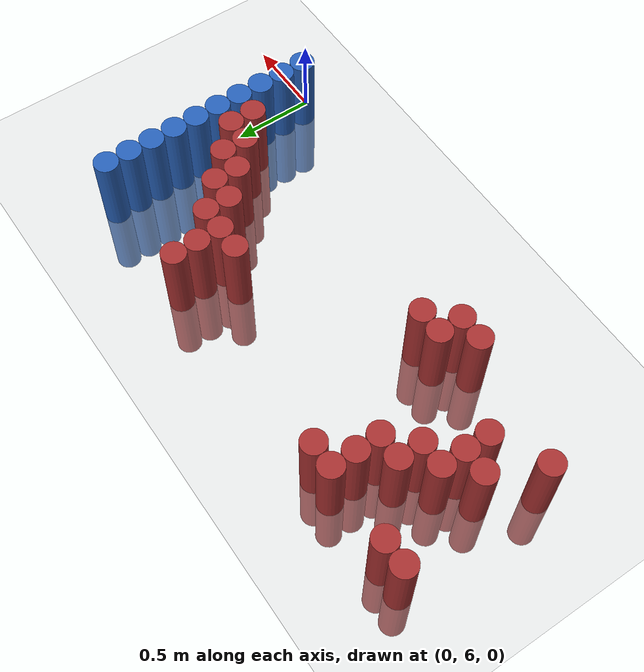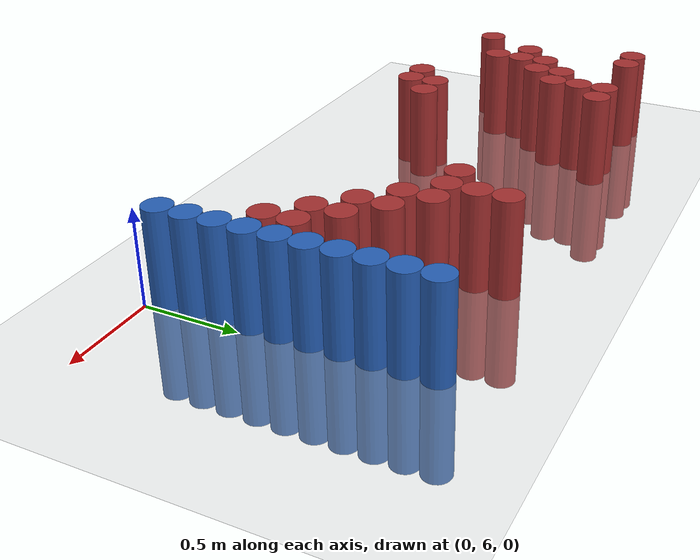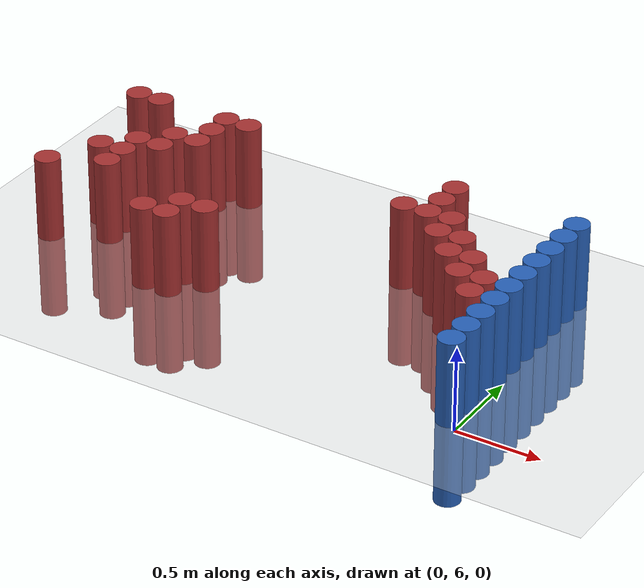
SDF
<sdf version="1.6">
 <world name="default">
  <model name="ground_plane">
   <static>1</static>
   <link name="link">
    <collision name="collision">
     <geometry><plane><normal>0 0 1</normal><size>100 100</size></plane></geometry>
     <surface><friction><ode><mu>100</mu><mu2>50</mu2></ode></friction></surface>
    </collision>
    <visual name="visual">
     <cast_shadows>0</cast_shadows>
     <geometry><plane><normal>0 0 1</normal><size>100 100</size></plane></geometry>
     <material>
      <script><uri>file://media/materials/scripts/gazebo.material</uri><name>Gazebo/Grey</name></script>
     </material>
    </visual>
   </link>
  </model>
  <model name="unit_cylinder_206">
   <static>1</static>
   <pose>-2.925000 6.525000 0.000000 0.000000 0.000000 0.000000</pose>
   <link name="link">
    <inertial>
     <mass>1</mass>
     <inertia><ixx>0.145833</ixx><ixy>0</ixy><ixz>0</ixz><iyy>0.145833</iyy><iyz>0</iyz><izz>0.125</izz></inertia>
    </inertial>
    <collision name="collision">
     <geometry><cylinder><radius>0.075000</radius><length>1</length></cylinder></geometry>
    </collision>
    <visual name="visual">
     <geometry><cylinder><radius>0.075000</radius><length>1</length></cylinder></geometry>
     <material>
      <ambient>0.648000 0.192000 0.192000 1</ambient>
      <diffuse>0.648000 0.192000 0.192000 1</diffuse>
     </material>
     <material>
      <script><name>Gazebo/Grey</name><uri>file://media/materials/scripts/gazebo.material</uri></script>
     </material>
    </visual>
    <sensor name="sensor_contact" type="contact"><contact><collision>collision</collision></contact></sensor>
   </link>
   <plugin filename="gz-sim-touchplugin-system" name="gz::sim::systems::TouchPlugin">
    <target>robot</target>
    <namespace>robot</namespace>
    <time>0.001</time>
    <enabled>true</enabled>
   </plugin>
  </model>
  <model name="unit_cylinder_207">
   <static>1</static>
   <pose>-2.925000 7.425000 0.000000 0.000000 0.000000 0.000000</pose>
   <link name="link">
    <inertial>
     <mass>1</mass>
     <inertia><ixx>0.145833</ixx><ixy>0</ixy><ixz>0</ixz><iyy>0.145833</iyy><iyz>0</iyz><izz>0.125</izz></inertia>
    </inertial>
    <collision name="collision">
     <geometry><cylinder><radius>0.075000</radius><length>1</length></cylinder></geometry>
    </collision>
    <visual name="visual">
     <geometry><cylinder><radius>0.075000</radius><length>1</length></cylinder></geometry>
     <material>
      <ambient>0.648000 0.192000 0.192000 1</ambient>
      <diffuse>0.648000 0.192000 0.192000 1</diffuse>
     </material>
     <material>
      <script><name>Gazebo/Grey</name><uri>file://media/materials/scripts/gazebo.material</uri></script>
     </material>
    </visual>
    <sensor name="sensor_contact" type="contact"><contact><collision>collision</collision></contact></sensor>
   </link>
   <plugin filename="gz-sim-touchplugin-system" name="gz::sim::systems::TouchPlugin">
    <target>robot</target>
    <namespace>robot</namespace>
    <time>0.001</time>
    <enabled>true</enabled>
   </plugin>
  </model>
  <model name="unit_cylinder_215">
   <static>1</static>
   <pose>-2.775000 6.825000 0.000000 0.000000 0.000000 0.000000</pose>
   <link name="link">
    <inertial>
     <mass>1</mass>
     <inertia><ixx>0.145833</ixx><ixy>0</ixy><ixz>0</ixz><iyy>0.145833</iyy><iyz>0</iyz><izz>0.125</izz></inertia>
    </inertial>
    <collision name="collision">
     <geometry><cylinder><radius>0.075000</radius><length>1</length></cylinder></geometry>
    </collision>
    <visual name="visual">
     <geometry><cylinder><radius>0.075000</radius><length>1</length></cylinder></geometry>
     <material>
      <ambient>0.648000 0.192000 0.192000 1</ambient>
      <diffuse>0.648000 0.192000 0.192000 1</diffuse>
     </material>
     <material>
      <script><name>Gazebo/Grey</name><uri>file://media/materials/scripts/gazebo.material</uri></script>
     </material>
    </visual>
    <sensor name="sensor_contact" type="contact"><contact><collision>collision</collision></contact></sensor>
   </link>
   <plugin filename="gz-sim-touchplugin-system" name="gz::sim::systems::TouchPlugin">
    <target>robot</target>
    <namespace>robot</namespace>
    <time>0.001</time>
    <enabled>true</enabled>
   </plugin>
  </model>
  <model name="unit_cylinder_216">
   <static>1</static>
   <pose>-2.775000 7.425000 0.000000 0.000000 0.000000 0.000000</pose>
   <link name="link">
    <inertial>
     <mass>1</mass>
     <inertia><ixx>0.145833</ixx><ixy>0</ixy><ixz>0</ixz><iyy>0.145833</iyy><iyz>0</iyz><izz>0.125</izz></inertia>
    </inertial>
    <collision name="collision">
     <geometry><cylinder><radius>0.075000</radius><length>1</length></cylinder></geometry>
    </collision>
    <visual name="visual">
     <geometry><cylinder><radius>0.075000</radius><length>1</length></cylinder></geometry>
     <material>
      <ambient>0.648000 0.192000 0.192000 1</ambient>
      <diffuse>0.648000 0.192000 0.192000 1</diffuse>
     </material>
     <material>
      <script><name>Gazebo/Grey</name><uri>file://media/materials/scripts/gazebo.material</uri></script>
     </material>
    </visual>
    <sensor name="sensor_contact" type="contact"><contact><collision>collision</collision></contact></sensor>
   </link>
   <plugin filename="gz-sim-touchplugin-system" name="gz::sim::systems::TouchPlugin">
    <target>robot</target>
    <namespace>robot</namespace>
    <time>0.001</time>
    <enabled>true</enabled>
   </plugin>
  </model>
  <model name="unit_cylinder_224">
   <static>1</static>
   <pose>-2.625000 6.675000 0.000000 0.000000 0.000000 0.000000</pose>
   <link name="link">
    <inertial>
     <mass>1</mass>
     <inertia><ixx>0.145833</ixx><ixy>0</ixy><ixz>0</ixz><iyy>0.145833</iyy><iyz>0</iyz><izz>0.125</izz></inertia>
    </inertial>
    <collision name="collision">
     <geometry><cylinder><radius>0.075000</radius><length>1</length></cylinder></geometry>
    </collision>
    <visual name="visual">
     <geometry><cylinder><radius>0.075000</radius><length>1</length></cylinder></geometry>
     <material>
      <ambient>0.648000 0.192000 0.192000 1</ambient>
      <diffuse>0.648000 0.192000 0.192000 1</diffuse>
     </material>
     <material>
      <script><name>Gazebo/Grey</name><uri>file://media/materials/scripts/gazebo.material</uri></script>
     </material>
    </visual>
    <sensor name="sensor_contact" type="contact"><contact><collision>collision</collision></contact></sensor>
   </link>
   <plugin filename="gz-sim-touchplugin-system" name="gz::sim::systems::TouchPlugin">
    <target>robot</target>
    <namespace>robot</namespace>
    <time>0.001</time>
    <enabled>true</enabled>
   </plugin>
  </model>
  <model name="unit_cylinder_225">
   <static>1</static>
   <pose>-2.625000 6.825000 0.000000 0.000000 0.000000 0.000000</pose>
   <link name="link">
    <inertial>
     <mass>1</mass>
     <inertia><ixx>0.145833</ixx><ixy>0</ixy><ixz>0</ixz><iyy>0.145833</iyy><iyz>0</iyz><izz>0.125</izz></inertia>
    </inertial>
    <collision name="collision">
     <geometry><cylinder><radius>0.075000</radius><length>1</length></cylinder></geometry>
    </collision>
    <visual name="visual">
     <geometry><cylinder><radius>0.075000</radius><length>1</length></cylinder></geometry>
     <material>
      <ambient>0.648000 0.192000 0.192000 1</ambient>
      <diffuse>0.648000 0.192000 0.192000 1</diffuse>
     </material>
     <material>
      <script><name>Gazebo/Grey</name><uri>file://media/materials/scripts/gazebo.material</uri></script>
     </material>
    </visual>
    <sensor name="sensor_contact" type="contact"><contact><collision>collision</collision></contact></sensor>
   </link>
   <plugin filename="gz-sim-touchplugin-system" name="gz::sim::systems::TouchPlugin">
    <target>robot</target>
    <namespace>robot</namespace>
    <time>0.001</time>
    <enabled>true</enabled>
   </plugin>
  </model>
  <model name="unit_cylinder_226">
   <static>1</static>
   <pose>-2.625000 6.975000 0.000000 0.000000 0.000000 0.000000</pose>
   <link name="link">
    <inertial>
     <mass>1</mass>
     <inertia><ixx>0.145833</ixx><ixy>0</ixy><ixz>0</ixz><iyy>0.145833</iyy><iyz>0</iyz><izz>0.125</izz></inertia>
    </inertial>
    <collision name="collision">
     <geometry><cylinder><radius>0.075000</radius><length>1</length></cylinder></geometry>
    </collision>
    <visual name="visual">
     <geometry><cylinder><radius>0.075000</radius><length>1</length></cylinder></geometry>
     <material>
      <ambient>0.648000 0.192000 0.192000 1</ambient>
      <diffuse>0.648000 0.192000 0.192000 1</diffuse>
     </material>
     <material>
      <script><name>Gazebo/Grey</name><uri>file://media/materials/scripts/gazebo.material</uri></script>
     </material>
    </visual>
    <sensor name="sensor_contact" type="contact"><contact><collision>collision</collision></contact></sensor>
   </link>
   <plugin filename="gz-sim-touchplugin-system" name="gz::sim::systems::TouchPlugin">
    <target>robot</target>
    <namespace>robot</namespace>
    <time>0.001</time>
    <enabled>true</enabled>
   </plugin>
  </model>
  <model name="unit_cylinder_234">
   <static>1</static>
   <pose>-2.475000 6.975000 0.000000 0.000000 0.000000 0.000000</pose>
   <link name="link">
    <inertial>
     <mass>1</mass>
     <inertia><ixx>0.145833</ixx><ixy>0</ixy><ixz>0</ixz><iyy>0.145833</iyy><iyz>0</iyz><izz>0.125</izz></inertia>
    </inertial>
    <collision name="collision">
     <geometry><cylinder><radius>0.075000</radius><length>1</length></cylinder></geometry>
    </collision>
    <visual name="visual">
     <geometry><cylinder><radius>0.075000</radius><length>1</length></cylinder></geometry>
     <material>
      <ambient>0.648000 0.192000 0.192000 1</ambient>
      <diffuse>0.648000 0.192000 0.192000 1</diffuse>
     </material>
     <material>
      <script><name>Gazebo/Grey</name><uri>file://media/materials/scripts/gazebo.material</uri></script>
     </material>
    </visual>
    <sensor name="sensor_contact" type="contact"><contact><collision>collision</collision></contact></sensor>
   </link>
   <plugin filename="gz-sim-touchplugin-system" name="gz::sim::systems::TouchPlugin">
    <target>robot</target>
    <namespace>robot</namespace>
    <time>0.001</time>
    <enabled>true</enabled>
   </plugin>
  </model>
  <model name="unit_cylinder_235">
   <static>1</static>
   <pose>-2.475000 7.125000 0.000000 0.000000 0.000000 0.000000</pose>
   <link name="link">
    <inertial>
     <mass>1</mass>
     <inertia><ixx>0.145833</ixx><ixy>0</ixy><ixz>0</ixz><iyy>0.145833</iyy><iyz>0</iyz><izz>0.125</izz></inertia>
    </inertial>
    <collision name="collision">
     <geometry><cylinder><radius>0.075000</radius><length>1</length></cylinder></geometry>
    </collision>
    <visual name="visual">
     <geometry><cylinder><radius>0.075000</radius><length>1</length></cylinder></geometry>
     <material>
      <ambient>0.648000 0.192000 0.192000 1</ambient>
      <diffuse>0.648000 0.192000 0.192000 1</diffuse>
     </material>
     <material>
      <script><name>Gazebo/Grey</name><uri>file://media/materials/scripts/gazebo.material</uri></script>
     </material>
    </visual>
    <sensor name="sensor_contact" type="contact"><contact><collision>collision</collision></contact></sensor>
   </link>
   <plugin filename="gz-sim-touchplugin-system" name="gz::sim::systems::TouchPlugin">
    <target>robot</target>
    <namespace>robot</namespace>
    <time>0.001</time>
    <enabled>true</enabled>
   </plugin>
  </model>
  <model name="unit_cylinder_244">
   <static>1</static>
   <pose>-2.325000 7.125000 0.000000 0.000000 0.000000 0.000000</pose>
   <link name="link">
    <inertial>
     <mass>1</mass>
     <inertia><ixx>0.145833</ixx><ixy>0</ixy><ixz>0</ixz><iyy>0.145833</iyy><iyz>0</iyz><izz>0.125</izz></inertia>
    </inertial>
    <collision name="collision">
     <geometry><cylinder><radius>0.075000</radius><length>1</length></cylinder></geometry>
    </collision>
    <visual name="visual">
     <geometry><cylinder><radius>0.075000</radius><length>1</length></cylinder></geometry>
     <material>
      <ambient>0.648000 0.192000 0.192000 1</ambient>
      <diffuse>0.648000 0.192000 0.192000 1</diffuse>
     </material>
     <material>
      <script><name>Gazebo/Grey</name><uri>file://media/materials/scripts/gazebo.material</uri></script>
     </material>
    </visual>
    <sensor name="sensor_contact" type="contact"><contact><collision>collision</collision></contact></sensor>
   </link>
   <plugin filename="gz-sim-touchplugin-system" name="gz::sim::systems::TouchPlugin">
    <target>robot</target>
    <namespace>robot</namespace>
    <time>0.001</time>
    <enabled>true</enabled>
   </plugin>
  </model>
  <model name="unit_cylinder_245">
   <static>1</static>
   <pose>-2.325000 7.275000 0.000000 0.000000 0.000000 0.000000</pose>
   <link name="link">
    <inertial>
     <mass>1</mass>
     <inertia><ixx>0.145833</ixx><ixy>0</ixy><ixz>0</ixz><iyy>0.145833</iyy><iyz>0</iyz><izz>0.125</izz></inertia>
    </inertial>
    <collision name="collision">
     <geometry><cylinder><radius>0.075000</radius><length>1</length></cylinder></geometry>
    </collision>
    <visual name="visual">
     <geometry><cylinder><radius>0.075000</radius><length>1</length></cylinder></geometry>
     <material>
      <ambient>0.648000 0.192000 0.192000 1</ambient>
      <diffuse>0.648000 0.192000 0.192000 1</diffuse>
     </material>
     <material>
      <script><name>Gazebo/Grey</name><uri>file://media/materials/scripts/gazebo.material</uri></script>
     </material>
    </visual>
    <sensor name="sensor_contact" type="contact"><contact><collision>collision</collision></contact></sensor>
   </link>
   <plugin filename="gz-sim-touchplugin-system" name="gz::sim::systems::TouchPlugin">
    <target>robot</target>
    <namespace>robot</namespace>
    <time>0.001</time>
    <enabled>true</enabled>
   </plugin>
  </model>
  <model name="unit_cylinder_246">
   <static>1</static>
   <pose>-2.325000 7.425000 0.000000 0.000000 0.000000 0.000000</pose>
   <link name="link">
    <inertial>
     <mass>1</mass>
     <inertia><ixx>0.145833</ixx><ixy>0</ixy><ixz>0</ixz><iyy>0.145833</iyy><iyz>0</iyz><izz>0.125</izz></inertia>
    </inertial>
    <collision name="collision">
     <geometry><cylinder><radius>0.075000</radius><length>1</length></cylinder></geometry>
    </collision>
    <visual name="visual">
     <geometry><cylinder><radius>0.075000</radius><length>1</length></cylinder></geometry>
     <material>
      <ambient>0.648000 0.192000 0.192000 1</ambient>
      <diffuse>0.648000 0.192000 0.192000 1</diffuse>
     </material>
     <material>
      <script><name>Gazebo/Grey</name><uri>file://media/materials/scripts/gazebo.material</uri></script>
     </material>
    </visual>
    <sensor name="sensor_contact" type="contact"><contact><collision>collision</collision></contact></sensor>
   </link>
   <plugin filename="gz-sim-touchplugin-system" name="gz::sim::systems::TouchPlugin">
    <target>robot</target>
    <namespace>robot</namespace>
    <time>0.001</time>
    <enabled>true</enabled>
   </plugin>
  </model>
  <model name="unit_cylinder_255">
   <static>1</static>
   <pose>-2.175000 6.375000 0.000000 0.000000 0.000000 0.000000</pose>
   <link name="link">
    <inertial>
     <mass>1</mass>
     <inertia><ixx>0.145833</ixx><ixy>0</ixy><ixz>0</ixz><iyy>0.145833</iyy><iyz>0</iyz><izz>0.125</izz></inertia>
    </inertial>
    <collision name="collision">
     <geometry><cylinder><radius>0.075000</radius><length>1</length></cylinder></geometry>
    </collision>
    <visual name="visual">
     <geometry><cylinder><radius>0.075000</radius><length>1</length></cylinder></geometry>
     <material>
      <ambient>0.648000 0.192000 0.192000 1</ambient>
      <diffuse>0.648000 0.192000 0.192000 1</diffuse>
     </material>
     <material>
      <script><name>Gazebo/Grey</name><uri>file://media/materials/scripts/gazebo.material</uri></script>
     </material>
    </visual>
    <sensor name="sensor_contact" type="contact"><contact><collision>collision</collision></contact></sensor>
   </link>
   <plugin filename="gz-sim-touchplugin-system" name="gz::sim::systems::TouchPlugin">
    <target>robot</target>
    <namespace>robot</namespace>
    <time>0.001</time>
    <enabled>true</enabled>
   </plugin>
  </model>
  <model name="unit_cylinder_256">
   <static>1</static>
   <pose>-2.175000 7.425000 0.000000 0.000000 0.000000 0.000000</pose>
   <link name="link">
    <inertial>
     <mass>1</mass>
     <inertia><ixx>0.145833</ixx><ixy>0</ixy><ixz>0</ixz><iyy>0.145833</iyy><iyz>0</iyz><izz>0.125</izz></inertia>
    </inertial>
    <collision name="collision">
     <geometry><cylinder><radius>0.075000</radius><length>1</length></cylinder></geometry>
    </collision>
    <visual name="visual">
     <geometry><cylinder><radius>0.075000</radius><length>1</length></cylinder></geometry>
     <material>
      <ambient>0.648000 0.192000 0.192000 1</ambient>
      <diffuse>0.648000 0.192000 0.192000 1</diffuse>
     </material>
     <material>
      <script><name>Gazebo/Grey</name><uri>file://media/materials/scripts/gazebo.material</uri></script>
     </material>
    </visual>
    <sensor name="sensor_contact" type="contact"><contact><collision>collision</collision></contact></sensor>
   </link>
   <plugin filename="gz-sim-touchplugin-system" name="gz::sim::systems::TouchPlugin">
    <target>robot</target>
    <namespace>robot</namespace>
    <time>0.001</time>
    <enabled>true</enabled>
   </plugin>
  </model>
  <model name="unit_cylinder_261">
   <static>1</static>
   <pose>-2.025000 6.375000 0.000000 0.000000 0.000000 0.000000</pose>
   <link name="link">
    <inertial>
     <mass>1</mass>
     <inertia><ixx>0.145833</ixx><ixy>0</ixy><ixz>0</ixz><iyy>0.145833</iyy><iyz>0</iyz><izz>0.125</izz></inertia>
    </inertial>
    <collision name="collision">
     <geometry><cylinder><radius>0.075000</radius><length>1</length></cylinder></geometry>
    </collision>
    <visual name="visual">
     <geometry><cylinder><radius>0.075000</radius><length>1</length></cylinder></geometry>
     <material>
      <ambient>0.648000 0.192000 0.192000 1</ambient>
      <diffuse>0.648000 0.192000 0.192000 1</diffuse>
     </material>
     <material>
      <script><name>Gazebo/Grey</name><uri>file://media/materials/scripts/gazebo.material</uri></script>
     </material>
    </visual>
    <sensor name="sensor_contact" type="contact"><contact><collision>collision</collision></contact></sensor>
   </link>
   <plugin filename="gz-sim-touchplugin-system" name="gz::sim::systems::TouchPlugin">
    <target>robot</target>
    <namespace>robot</namespace>
    <time>0.001</time>
    <enabled>true</enabled>
   </plugin>
  </model>
  <model name="unit_cylinder_262">
   <static>1</static>
   <pose>-2.025000 6.525000 0.000000 0.000000 0.000000 0.000000</pose>
   <link name="link">
    <inertial>
     <mass>1</mass>
     <inertia><ixx>0.145833</ixx><ixy>0</ixy><ixz>0</ixz><iyy>0.145833</iyy><iyz>0</iyz><izz>0.125</izz></inertia>
    </inertial>
    <collision name="collision">
     <geometry><cylinder><radius>0.075000</radius><length>1</length></cylinder></geometry>
    </collision>
    <visual name="visual">
     <geometry><cylinder><radius>0.075000</radius><length>1</length></cylinder></geometry>
     <material>
      <ambient>0.648000 0.192000 0.192000 1</ambient>
      <diffuse>0.648000 0.192000 0.192000 1</diffuse>
     </material>
     <material>
      <script><name>Gazebo/Grey</name><uri>file://media/materials/scripts/gazebo.material</uri></script>
     </material>
    </visual>
    <sensor name="sensor_contact" type="contact"><contact><collision>collision</collision></contact></sensor>
   </link>
   <plugin filename="gz-sim-touchplugin-system" name="gz::sim::systems::TouchPlugin">
    <target>robot</target>
    <namespace>robot</namespace>
    <time>0.001</time>
    <enabled>true</enabled>
   </plugin>
  </model>
  <model name="unit_cylinder_268">
   <static>1</static>
   <pose>-1.875000 6.525000 0.000000 0.000000 0.000000 0.000000</pose>
   <link name="link">
    <inertial>
     <mass>1</mass>
     <inertia><ixx>0.145833</ixx><ixy>0</ixy><ixz>0</ixz><iyy>0.145833</iyy><iyz>0</iyz><izz>0.125</izz></inertia>
    </inertial>
    <collision name="collision">
     <geometry><cylinder><radius>0.075000</radius><length>1</length></cylinder></geometry>
    </collision>
    <visual name="visual">
     <geometry><cylinder><radius>0.075000</radius><length>1</length></cylinder></geometry>
     <material>
      <ambient>0.648000 0.192000 0.192000 1</ambient>
      <diffuse>0.648000 0.192000 0.192000 1</diffuse>
     </material>
     <material>
      <script><name>Gazebo/Grey</name><uri>file://media/materials/scripts/gazebo.material</uri></script>
     </material>
    </visual>
    <sensor name="sensor_contact" type="contact"><contact><collision>collision</collision></contact></sensor>
   </link>
   <plugin filename="gz-sim-touchplugin-system" name="gz::sim::systems::TouchPlugin">
    <target>robot</target>
    <namespace>robot</namespace>
    <time>0.001</time>
    <enabled>true</enabled>
   </plugin>
  </model>
  <model name="unit_cylinder_281">
   <static>1</static>
   <pose>-0.975000 7.125000 0.000000 0.000000 0.000000 0.000000</pose>
   <link name="link">
    <inertial>
     <mass>1</mass>
     <inertia><ixx>0.145833</ixx><ixy>0</ixy><ixz>0</ixz><iyy>0.145833</iyy><iyz>0</iyz><izz>0.125</izz></inertia>
    </inertial>
    <collision name="collision">
     <geometry><cylinder><radius>0.075000</radius><length>1</length></cylinder></geometry>
    </collision>
    <visual name="visual">
     <geometry><cylinder><radius>0.075000</radius><length>1</length></cylinder></geometry>
     <material>
      <ambient>0.648000 0.192000 0.192000 1</ambient>
      <diffuse>0.648000 0.192000 0.192000 1</diffuse>
     </material>
     <material>
      <script><name>Gazebo/Grey</name><uri>file://media/materials/scripts/gazebo.material</uri></script>
     </material>
    </visual>
    <sensor name="sensor_contact" type="contact"><contact><collision>collision</collision></contact></sensor>
   </link>
   <plugin filename="gz-sim-touchplugin-system" name="gz::sim::systems::TouchPlugin">
    <target>robot</target>
    <namespace>robot</namespace>
    <time>0.001</time>
    <enabled>true</enabled>
   </plugin>
  </model>
  <model name="unit_cylinder_285">
   <static>1</static>
   <pose>-0.825000 7.125000 0.000000 0.000000 0.000000 0.000000</pose>
   <link name="link">
    <inertial>
     <mass>1</mass>
     <inertia><ixx>0.145833</ixx><ixy>0</ixy><ixz>0</ixz><iyy>0.145833</iyy><iyz>0</iyz><izz>0.125</izz></inertia>
    </inertial>
    <collision name="collision">
     <geometry><cylinder><radius>0.075000</radius><length>1</length></cylinder></geometry>
    </collision>
    <visual name="visual">
     <geometry><cylinder><radius>0.075000</radius><length>1</length></cylinder></geometry>
     <material>
      <ambient>0.648000 0.192000 0.192000 1</ambient>
      <diffuse>0.648000 0.192000 0.192000 1</diffuse>
     </material>
     <material>
      <script><name>Gazebo/Grey</name><uri>file://media/materials/scripts/gazebo.material</uri></script>
     </material>
    </visual>
    <sensor name="sensor_contact" type="contact"><contact><collision>collision</collision></contact></sensor>
   </link>
   <plugin filename="gz-sim-touchplugin-system" name="gz::sim::systems::TouchPlugin">
    <target>robot</target>
    <namespace>robot</namespace>
    <time>0.001</time>
    <enabled>true</enabled>
   </plugin>
  </model>
  <model name="unit_cylinder_286">
   <static>1</static>
   <pose>-0.825000 7.275000 0.000000 0.000000 0.000000 0.000000</pose>
   <link name="link">
    <inertial>
     <mass>1</mass>
     <inertia><ixx>0.145833</ixx><ixy>0</ixy><ixz>0</ixz><iyy>0.145833</iyy><iyz>0</iyz><izz>0.125</izz></inertia>
    </inertial>
    <collision name="collision">
     <geometry><cylinder><radius>0.075000</radius><length>1</length></cylinder></geometry>
    </collision>
    <visual name="visual">
     <geometry><cylinder><radius>0.075000</radius><length>1</length></cylinder></geometry>
     <material>
      <ambient>0.648000 0.192000 0.192000 1</ambient>
      <diffuse>0.648000 0.192000 0.192000 1</diffuse>
     </material>
     <material>
      <script><name>Gazebo/Grey</name><uri>file://media/materials/scripts/gazebo.material</uri></script>
     </material>
    </visual>
    <sensor name="sensor_contact" type="contact"><contact><collision>collision</collision></contact></sensor>
   </link>
   <plugin filename="gz-sim-touchplugin-system" name="gz::sim::systems::TouchPlugin">
    <target>robot</target>
    <namespace>robot</namespace>
    <time>0.001</time>
    <enabled>true</enabled>
   </plugin>
  </model>
  <model name="unit_cylinder_287">
   <static>1</static>
   <pose>-0.825000 7.425000 0.000000 0.000000 0.000000 0.000000</pose>
   <link name="link">
    <inertial>
     <mass>1</mass>
     <inertia><ixx>0.145833</ixx><ixy>0</ixy><ixz>0</ixz><iyy>0.145833</iyy><iyz>0</iyz><izz>0.125</izz></inertia>
    </inertial>
    <collision name="collision">
     <geometry><cylinder><radius>0.075000</radius><length>1</length></cylinder></geometry>
    </collision>
    <visual name="visual">
     <geometry><cylinder><radius>0.075000</radius><length>1</length></cylinder></geometry>
     <material>
      <ambient>0.648000 0.192000 0.192000 1</ambient>
      <diffuse>0.648000 0.192000 0.192000 1</diffuse>
     </material>
     <material>
      <script><name>Gazebo/Grey</name><uri>file://media/materials/scripts/gazebo.material</uri></script>
     </material>
    </visual>
    <sensor name="sensor_contact" type="contact"><contact><collision>collision</collision></contact></sensor>
   </link>
   <plugin filename="gz-sim-touchplugin-system" name="gz::sim::systems::TouchPlugin">
    <target>robot</target>
    <namespace>robot</namespace>
    <time>0.001</time>
    <enabled>true</enabled>
   </plugin>
  </model>
  <model name="unit_cylinder_293">
   <static>1</static>
   <pose>-0.675000 6.975000 0.000000 0.000000 0.000000 0.000000</pose>
   <link name="link">
    <inertial>
     <mass>1</mass>
     <inertia><ixx>0.145833</ixx><ixy>0</ixy><ixz>0</ixz><iyy>0.145833</iyy><iyz>0</iyz><izz>0.125</izz></inertia>
    </inertial>
    <collision name="collision">
     <geometry><cylinder><radius>0.075000</radius><length>1</length></cylinder></geometry>
    </collision>
    <visual name="visual">
     <geometry><cylinder><radius>0.075000</radius><length>1</length></cylinder></geometry>
     <material>
      <ambient>0.648000 0.192000 0.192000 1</ambient>
      <diffuse>0.648000 0.192000 0.192000 1</diffuse>
     </material>
     <material>
      <script><name>Gazebo/Grey</name><uri>file://media/materials/scripts/gazebo.material</uri></script>
     </material>
    </visual>
    <sensor name="sensor_contact" type="contact"><contact><collision>collision</collision></contact></sensor>
   </link>
   <plugin filename="gz-sim-touchplugin-system" name="gz::sim::systems::TouchPlugin">
    <target>robot</target>
    <namespace>robot</namespace>
    <time>0.001</time>
    <enabled>true</enabled>
   </plugin>
  </model>
  <model name="unit_cylinder_294">
   <static>1</static>
   <pose>-0.675000 7.125000 0.000000 0.000000 0.000000 0.000000</pose>
   <link name="link">
    <inertial>
     <mass>1</mass>
     <inertia><ixx>0.145833</ixx><ixy>0</ixy><ixz>0</ixz><iyy>0.145833</iyy><iyz>0</iyz><izz>0.125</izz></inertia>
    </inertial>
    <collision name="collision">
     <geometry><cylinder><radius>0.075000</radius><length>1</length></cylinder></geometry>
    </collision>
    <visual name="visual">
     <geometry><cylinder><radius>0.075000</radius><length>1</length></cylinder></geometry>
     <material>
      <ambient>0.648000 0.192000 0.192000 1</ambient>
      <diffuse>0.648000 0.192000 0.192000 1</diffuse>
     </material>
     <material>
      <script><name>Gazebo/Grey</name><uri>file://media/materials/scripts/gazebo.material</uri></script>
     </material>
    </visual>
    <sensor name="sensor_contact" type="contact"><contact><collision>collision</collision></contact></sensor>
   </link>
   <plugin filename="gz-sim-touchplugin-system" name="gz::sim::systems::TouchPlugin">
    <target>robot</target>
    <namespace>robot</namespace>
    <time>0.001</time>
    <enabled>true</enabled>
   </plugin>
  </model>
  <model name="unit_cylinder_300">
   <static>1</static>
   <pose>-0.525000 6.825000 0.000000 0.000000 0.000000 0.000000</pose>
   <link name="link">
    <inertial>
     <mass>1</mass>
     <inertia><ixx>0.145833</ixx><ixy>0</ixy><ixz>0</ixz><iyy>0.145833</iyy><iyz>0</iyz><izz>0.125</izz></inertia>
    </inertial>
    <collision name="collision">
     <geometry><cylinder><radius>0.075000</radius><length>1</length></cylinder></geometry>
    </collision>
    <visual name="visual">
     <geometry><cylinder><radius>0.075000</radius><length>1</length></cylinder></geometry>
     <material>
      <ambient>0.648000 0.192000 0.192000 1</ambient>
      <diffuse>0.648000 0.192000 0.192000 1</diffuse>
     </material>
     <material>
      <script><name>Gazebo/Grey</name><uri>file://media/materials/scripts/gazebo.material</uri></script>
     </material>
    </visual>
    <sensor name="sensor_contact" type="contact"><contact><collision>collision</collision></contact></sensor>
   </link>
   <plugin filename="gz-sim-touchplugin-system" name="gz::sim::systems::TouchPlugin">
    <target>robot</target>
    <namespace>robot</namespace>
    <time>0.001</time>
    <enabled>true</enabled>
   </plugin>
  </model>
  <model name="unit_cylinder_301">
   <static>1</static>
   <pose>-0.525000 6.975000 0.000000 0.000000 0.000000 0.000000</pose>
   <link name="link">
    <inertial>
     <mass>1</mass>
     <inertia><ixx>0.145833</ixx><ixy>0</ixy><ixz>0</ixz><iyy>0.145833</iyy><iyz>0</iyz><izz>0.125</izz></inertia>
    </inertial>
    <collision name="collision">
     <geometry><cylinder><radius>0.075000</radius><length>1</length></cylinder></geometry>
    </collision>
    <visual name="visual">
     <geometry><cylinder><radius>0.075000</radius><length>1</length></cylinder></geometry>
     <material>
      <ambient>0.648000 0.192000 0.192000 1</ambient>
      <diffuse>0.648000 0.192000 0.192000 1</diffuse>
     </material>
     <material>
      <script><name>Gazebo/Grey</name><uri>file://media/materials/scripts/gazebo.material</uri></script>
     </material>
    </visual>
    <sensor name="sensor_contact" type="contact"><contact><collision>collision</collision></contact></sensor>
   </link>
   <plugin filename="gz-sim-touchplugin-system" name="gz::sim::systems::TouchPlugin">
    <target>robot</target>
    <namespace>robot</namespace>
    <time>0.001</time>
    <enabled>true</enabled>
   </plugin>
  </model>
  <model name="unit_cylinder_307">
   <static>1</static>
   <pose>-0.375000 6.675000 0.000000 0.000000 0.000000 0.000000</pose>
   <link name="link">
    <inertial>
     <mass>1</mass>
     <inertia><ixx>0.145833</ixx><ixy>0</ixy><ixz>0</ixz><iyy>0.145833</iyy><iyz>0</iyz><izz>0.125</izz></inertia>
    </inertial>
    <collision name="collision">
     <geometry><cylinder><radius>0.075000</radius><length>1</length></cylinder></geometry>
    </collision>
    <visual name="visual">
     <geometry><cylinder><radius>0.075000</radius><length>1</length></cylinder></geometry>
     <material>
      <ambient>0.648000 0.192000 0.192000 1</ambient>
      <diffuse>0.648000 0.192000 0.192000 1</diffuse>
     </material>
     <material>
      <script><name>Gazebo/Grey</name><uri>file://media/materials/scripts/gazebo.material</uri></script>
     </material>
    </visual>
    <sensor name="sensor_contact" type="contact"><contact><collision>collision</collision></contact></sensor>
   </link>
   <plugin filename="gz-sim-touchplugin-system" name="gz::sim::systems::TouchPlugin">
    <target>robot</target>
    <namespace>robot</namespace>
    <time>0.001</time>
    <enabled>true</enabled>
   </plugin>
  </model>
  <model name="unit_cylinder_308">
   <static>1</static>
   <pose>-0.375000 6.825000 0.000000 0.000000 0.000000 0.000000</pose>
   <link name="link">
    <inertial>
     <mass>1</mass>
     <inertia><ixx>0.145833</ixx><ixy>0</ixy><ixz>0</ixz><iyy>0.145833</iyy><iyz>0</iyz><izz>0.125</izz></inertia>
    </inertial>
    <collision name="collision">
     <geometry><cylinder><radius>0.075000</radius><length>1</length></cylinder></geometry>
    </collision>
    <visual name="visual">
     <geometry><cylinder><radius>0.075000</radius><length>1</length></cylinder></geometry>
     <material>
      <ambient>0.648000 0.192000 0.192000 1</ambient>
      <diffuse>0.648000 0.192000 0.192000 1</diffuse>
     </material>
     <material>
      <script><name>Gazebo/Grey</name><uri>file://media/materials/scripts/gazebo.material</uri></script>
     </material>
    </visual>
    <sensor name="sensor_contact" type="contact"><contact><collision>collision</collision></contact></sensor>
   </link>
   <plugin filename="gz-sim-touchplugin-system" name="gz::sim::systems::TouchPlugin">
    <target>robot</target>
    <namespace>robot</namespace>
    <time>0.001</time>
    <enabled>true</enabled>
   </plugin>
  </model>
  <model name="unit_cylinder_316">
   <static>1</static>
   <pose>-0.225000 6.525000 0.000000 0.000000 0.000000 0.000000</pose>
   <link name="link">
    <inertial>
     <mass>1</mass>
     <inertia><ixx>0.145833</ixx><ixy>0</ixy><ixz>0</ixz><iyy>0.145833</iyy><iyz>0</iyz><izz>0.125</izz></inertia>
    </inertial>
    <collision name="collision">
     <geometry><cylinder><radius>0.075000</radius><length>1</length></cylinder></geometry>
    </collision>
    <visual name="visual">
     <geometry><cylinder><radius>0.075000</radius><length>1</length></cylinder></geometry>
     <material>
      <ambient>0.648000 0.192000 0.192000 1</ambient>
      <diffuse>0.648000 0.192000 0.192000 1</diffuse>
     </material>
     <material>
      <script><name>Gazebo/Grey</name><uri>file://media/materials/scripts/gazebo.material</uri></script>
     </material>
    </visual>
    <sensor name="sensor_contact" type="contact"><contact><collision>collision</collision></contact></sensor>
   </link>
   <plugin filename="gz-sim-touchplugin-system" name="gz::sim::systems::TouchPlugin">
    <target>robot</target>
    <namespace>robot</namespace>
    <time>0.001</time>
    <enabled>true</enabled>
   </plugin>
  </model>
  <model name="unit_cylinder_317">
   <static>1</static>
   <pose>-0.225000 6.675000 0.000000 0.000000 0.000000 0.000000</pose>
   <link name="link">
    <inertial>
     <mass>1</mass>
     <inertia><ixx>0.145833</ixx><ixy>0</ixy><ixz>0</ixz><iyy>0.145833</iyy><iyz>0</iyz><izz>0.125</izz></inertia>
    </inertial>
    <collision name="collision">
     <geometry><cylinder><radius>0.075000</radius><length>1</length></cylinder></geometry>
    </collision>
    <visual name="visual">
     <geometry><cylinder><radius>0.075000</radius><length>1</length></cylinder></geometry>
     <material>
      <ambient>0.648000 0.192000 0.192000 1</ambient>
      <diffuse>0.648000 0.192000 0.192000 1</diffuse>
     </material>
     <material>
      <script><name>Gazebo/Grey</name><uri>file://media/materials/scripts/gazebo.material</uri></script>
     </material>
    </visual>
    <sensor name="sensor_contact" type="contact"><contact><collision>collision</collision></contact></sensor>
   </link>
   <plugin filename="gz-sim-touchplugin-system" name="gz::sim::systems::TouchPlugin">
    <target>robot</target>
    <namespace>robot</namespace>
    <time>0.001</time>
    <enabled>true</enabled>
   </plugin>
  </model>
  <model name="unit_cylinder_329">
   <static>1</static>
   <pose>-0.075000 6.075000 0.000000 0.000000 0.000000 0.000000</pose>
   <link name="link">
    <inertial>
     <mass>1</mass>
     <inertia><ixx>0.145833</ixx><ixy>0</ixy><ixz>0</ixz><iyy>0.145833</iyy><iyz>0</iyz><izz>0.125</izz></inertia>
    </inertial>
    <collision name="collision">
     <geometry><cylinder><radius>0.075000</radius><length>1</length></cylinder></geometry>
    </collision>
    <visual name="visual">
     <geometry><cylinder><radius>0.075000</radius><length>1</length></cylinder></geometry>
     <material>
      <ambient>0.152000 0.379000 0.720000 1</ambient>
      <diffuse>0.152000 0.379000 0.720000 1</diffuse>
     </material>
     <material>
      <script><name>Gazebo/Grey</name><uri>file://media/materials/scripts/gazebo.material</uri></script>
     </material>
    </visual>
    <sensor name="sensor_contact" type="contact"><contact><collision>collision</collision></contact></sensor>
   </link>
   <plugin filename="gz-sim-touchplugin-system" name="gz::sim::systems::TouchPlugin">
    <target>robot</target>
    <namespace>robot</namespace>
    <time>0.001</time>
    <enabled>true</enabled>
   </plugin>
  </model>
  <model name="unit_cylinder_330">
   <static>1</static>
   <pose>-0.075000 6.225000 0.000000 0.000000 0.000000 0.000000</pose>
   <link name="link">
    <inertial>
     <mass>1</mass>
     <inertia><ixx>0.145833</ixx><ixy>0</ixy><ixz>0</ixz><iyy>0.145833</iyy><iyz>0</iyz><izz>0.125</izz></inertia>
    </inertial>
    <collision name="collision">
     <geometry><cylinder><radius>0.075000</radius><length>1</length></cylinder></geometry>
    </collision>
    <visual name="visual">
     <geometry><cylinder><radius>0.075000</radius><length>1</length></cylinder></geometry>
     <material>
      <ambient>0.152000 0.379000 0.720000 1</ambient>
      <diffuse>0.152000 0.379000 0.720000 1</diffuse>
     </material>
     <material>
      <script><name>Gazebo/Grey</name><uri>file://media/materials/scripts/gazebo.material</uri></script>
     </material>
    </visual>
    <sensor name="sensor_contact" type="contact"><contact><collision>collision</collision></contact></sensor>
   </link>
   <plugin filename="gz-sim-touchplugin-system" name="gz::sim::systems::TouchPlugin">
    <target>robot</target>
    <namespace>robot</namespace>
    <time>0.001</time>
    <enabled>true</enabled>
   </plugin>
  </model>
  <model name="unit_cylinder_331">
   <static>1</static>
   <pose>-0.075000 6.375000 0.000000 0.000000 0.000000 0.000000</pose>
   <link name="link">
    <inertial>
     <mass>1</mass>
     <inertia><ixx>0.145833</ixx><ixy>0</ixy><ixz>0</ixz><iyy>0.145833</iyy><iyz>0</iyz><izz>0.125</izz></inertia>
    </inertial>
    <collision name="collision">
     <geometry><cylinder><radius>0.075000</radius><length>1</length></cylinder></geometry>
    </collision>
    <visual name="visual">
     <geometry><cylinder><radius>0.075000</radius><length>1</length></cylinder></geometry>
     <material>
      <ambient>0.152000 0.379000 0.720000 1</ambient>
      <diffuse>0.152000 0.379000 0.720000 1</diffuse>
     </material>
     <material>
      <script><name>Gazebo/Grey</name><uri>file://media/materials/scripts/gazebo.material</uri></script>
     </material>
    </visual>
    <sensor name="sensor_contact" type="contact"><contact><collision>collision</collision></contact></sensor>
   </link>
   <plugin filename="gz-sim-touchplugin-system" name="gz::sim::systems::TouchPlugin">
    <target>robot</target>
    <namespace>robot</namespace>
    <time>0.001</time>
    <enabled>true</enabled>
   </plugin>
  </model>
  <model name="unit_cylinder_332">
   <static>1</static>
   <pose>-0.075000 6.525000 0.000000 0.000000 0.000000 0.000000</pose>
   <link name="link">
    <inertial>
     <mass>1</mass>
     <inertia><ixx>0.145833</ixx><ixy>0</ixy><ixz>0</ixz><iyy>0.145833</iyy><iyz>0</iyz><izz>0.125</izz></inertia>
    </inertial>
    <collision name="collision">
     <geometry><cylinder><radius>0.075000</radius><length>1</length></cylinder></geometry>
    </collision>
    <visual name="visual">
     <geometry><cylinder><radius>0.075000</radius><length>1</length></cylinder></geometry>
     <material>
      <ambient>0.152000 0.379000 0.720000 1</ambient>
      <diffuse>0.152000 0.379000 0.720000 1</diffuse>
     </material>
     <material>
      <script><name>Gazebo/Grey</name><uri>file://media/materials/scripts/gazebo.material</uri></script>
     </material>
    </visual>
    <sensor name="sensor_contact" type="contact"><contact><collision>collision</collision></contact></sensor>
   </link>
   <plugin filename="gz-sim-touchplugin-system" name="gz::sim::systems::TouchPlugin">
    <target>robot</target>
    <namespace>robot</namespace>
    <time>0.001</time>
    <enabled>true</enabled>
   </plugin>
  </model>
  <model name="unit_cylinder_333">
   <static>1</static>
   <pose>-0.075000 6.675000 0.000000 0.000000 0.000000 0.000000</pose>
   <link name="link">
    <inertial>
     <mass>1</mass>
     <inertia><ixx>0.145833</ixx><ixy>0</ixy><ixz>0</ixz><iyy>0.145833</iyy><iyz>0</iyz><izz>0.125</izz></inertia>
    </inertial>
    <collision name="collision">
     <geometry><cylinder><radius>0.075000</radius><length>1</length></cylinder></geometry>
    </collision>
    <visual name="visual">
     <geometry><cylinder><radius>0.075000</radius><length>1</length></cylinder></geometry>
     <material>
      <ambient>0.152000 0.379000 0.720000 1</ambient>
      <diffuse>0.152000 0.379000 0.720000 1</diffuse>
     </material>
     <material>
      <script><name>Gazebo/Grey</name><uri>file://media/materials/scripts/gazebo.material</uri></script>
     </material>
    </visual>
    <sensor name="sensor_contact" type="contact"><contact><collision>collision</collision></contact></sensor>
   </link>
   <plugin filename="gz-sim-touchplugin-system" name="gz::sim::systems::TouchPlugin">
    <target>robot</target>
    <namespace>robot</namespace>
    <time>0.001</time>
    <enabled>true</enabled>
   </plugin>
  </model>
  <model name="unit_cylinder_334">
   <static>1</static>
   <pose>-0.075000 6.825000 0.000000 0.000000 0.000000 0.000000</pose>
   <link name="link">
    <inertial>
     <mass>1</mass>
     <inertia><ixx>0.145833</ixx><ixy>0</ixy><ixz>0</ixz><iyy>0.145833</iyy><iyz>0</iyz><izz>0.125</izz></inertia>
    </inertial>
    <collision name="collision">
     <geometry><cylinder><radius>0.075000</radius><length>1</length></cylinder></geometry>
    </collision>
    <visual name="visual">
     <geometry><cylinder><radius>0.075000</radius><length>1</length></cylinder></geometry>
     <material>
      <ambient>0.152000 0.379000 0.720000 1</ambient>
      <diffuse>0.152000 0.379000 0.720000 1</diffuse>
     </material>
     <material>
      <script><name>Gazebo/Grey</name><uri>file://media/materials/scripts/gazebo.material</uri></script>
     </material>
    </visual>
    <sensor name="sensor_contact" type="contact"><contact><collision>collision</collision></contact></sensor>
   </link>
   <plugin filename="gz-sim-touchplugin-system" name="gz::sim::systems::TouchPlugin">
    <target>robot</target>
    <namespace>robot</namespace>
    <time>0.001</time>
    <enabled>true</enabled>
   </plugin>
  </model>
  <model name="unit_cylinder_335">
   <static>1</static>
   <pose>-0.075000 6.975000 0.000000 0.000000 0.000000 0.000000</pose>
   <link name="link">
    <inertial>
     <mass>1</mass>
     <inertia><ixx>0.145833</ixx><ixy>0</ixy><ixz>0</ixz><iyy>0.145833</iyy><iyz>0</iyz><izz>0.125</izz></inertia>
    </inertial>
    <collision name="collision">
     <geometry><cylinder><radius>0.075000</radius><length>1</length></cylinder></geometry>
    </collision>
    <visual name="visual">
     <geometry><cylinder><radius>0.075000</radius><length>1</length></cylinder></geometry>
     <material>
      <ambient>0.152000 0.379000 0.720000 1</ambient>
      <diffuse>0.152000 0.379000 0.720000 1</diffuse>
     </material>
     <material>
      <script><name>Gazebo/Grey</name><uri>file://media/materials/scripts/gazebo.material</uri></script>
     </material>
    </visual>
    <sensor name="sensor_contact" type="contact"><contact><collision>collision</collision></contact></sensor>
   </link>
   <plugin filename="gz-sim-touchplugin-system" name="gz::sim::systems::TouchPlugin">
    <target>robot</target>
    <namespace>robot</namespace>
    <time>0.001</time>
    <enabled>true</enabled>
   </plugin>
  </model>
  <model name="unit_cylinder_336">
   <static>1</static>
   <pose>-0.075000 7.125000 0.000000 0.000000 0.000000 0.000000</pose>
   <link name="link">
    <inertial>
     <mass>1</mass>
     <inertia><ixx>0.145833</ixx><ixy>0</ixy><ixz>0</ixz><iyy>0.145833</iyy><iyz>0</iyz><izz>0.125</izz></inertia>
    </inertial>
    <collision name="collision">
     <geometry><cylinder><radius>0.075000</radius><length>1</length></cylinder></geometry>
    </collision>
    <visual name="visual">
     <geometry><cylinder><radius>0.075000</radius><length>1</length></cylinder></geometry>
     <material>
      <ambient>0.152000 0.379000 0.720000 1</ambient>
      <diffuse>0.152000 0.379000 0.720000 1</diffuse>
     </material>
     <material>
      <script><name>Gazebo/Grey</name><uri>file://media/materials/scripts/gazebo.material</uri></script>
     </material>
    </visual>
    <sensor name="sensor_contact" type="contact"><contact><collision>collision</collision></contact></sensor>
   </link>
   <plugin filename="gz-sim-touchplugin-system" name="gz::sim::systems::TouchPlugin">
    <target>robot</target>
    <namespace>robot</namespace>
    <time>0.001</time>
    <enabled>true</enabled>
   </plugin>
  </model>
  <model name="unit_cylinder_337">
   <static>1</static>
   <pose>-0.075000 7.275000 0.000000 0.000000 0.000000 0.000000</pose>
   <link name="link">
    <inertial>
     <mass>1</mass>
     <inertia><ixx>0.145833</ixx><ixy>0</ixy><ixz>0</ixz><iyy>0.145833</iyy><iyz>0</iyz><izz>0.125</izz></inertia>
    </inertial>
    <collision name="collision">
     <geometry><cylinder><radius>0.075000</radius><length>1</length></cylinder></geometry>
    </collision>
    <visual name="visual">
     <geometry><cylinder><radius>0.075000</radius><length>1</length></cylinder></geometry>
     <material>
      <ambient>0.152000 0.379000 0.720000 1</ambient>
      <diffuse>0.152000 0.379000 0.720000 1</diffuse>
     </material>
     <material>
      <script><name>Gazebo/Grey</name><uri>file://media/materials/scripts/gazebo.material</uri></script>
     </material>
    </visual>
    <sensor name="sensor_contact" type="contact"><contact><collision>collision</collision></contact></sensor>
   </link>
   <plugin filename="gz-sim-touchplugin-system" name="gz::sim::systems::TouchPlugin">
    <target>robot</target>
    <namespace>robot</namespace>
    <time>0.001</time>
    <enabled>true</enabled>
   </plugin>
  </model>
  <model name="unit_cylinder_338">
   <static>1</static>
   <pose>-0.075000 7.425000 0.000000 0.000000 0.000000 0.000000</pose>
   <link name="link">
    <inertial>
     <mass>1</mass>
     <inertia><ixx>0.145833</ixx><ixy>0</ixy><ixz>0</ixz><iyy>0.145833</iyy><iyz>0</iyz><izz>0.125</izz></inertia>
    </inertial>
    <collision name="collision">
     <geometry><cylinder><radius>0.075000</radius><length>1</length></cylinder></geometry>
    </collision>
    <visual name="visual">
     <geometry><cylinder><radius>0.075000</radius><length>1</length></cylinder></geometry>
     <material>
      <ambient>0.152000 0.379000 0.720000 1</ambient>
      <diffuse>0.152000 0.379000 0.720000 1</diffuse>
     </material>
     <material>
      <script><name>Gazebo/Grey</name><uri>file://media/materials/scripts/gazebo.material</uri></script>
     </material>
    </visual>
    <sensor name="sensor_contact" type="contact"><contact><collision>collision</collision></contact></sensor>
   </link>
   <plugin filename="gz-sim-touchplugin-system" name="gz::sim::systems::TouchPlugin">
    <target>robot</target>
    <namespace>robot</namespace>
    <time>0.001</time>
    <enabled>true</enabled>
   </plugin>
  </model>
 </world>
</sdf>
